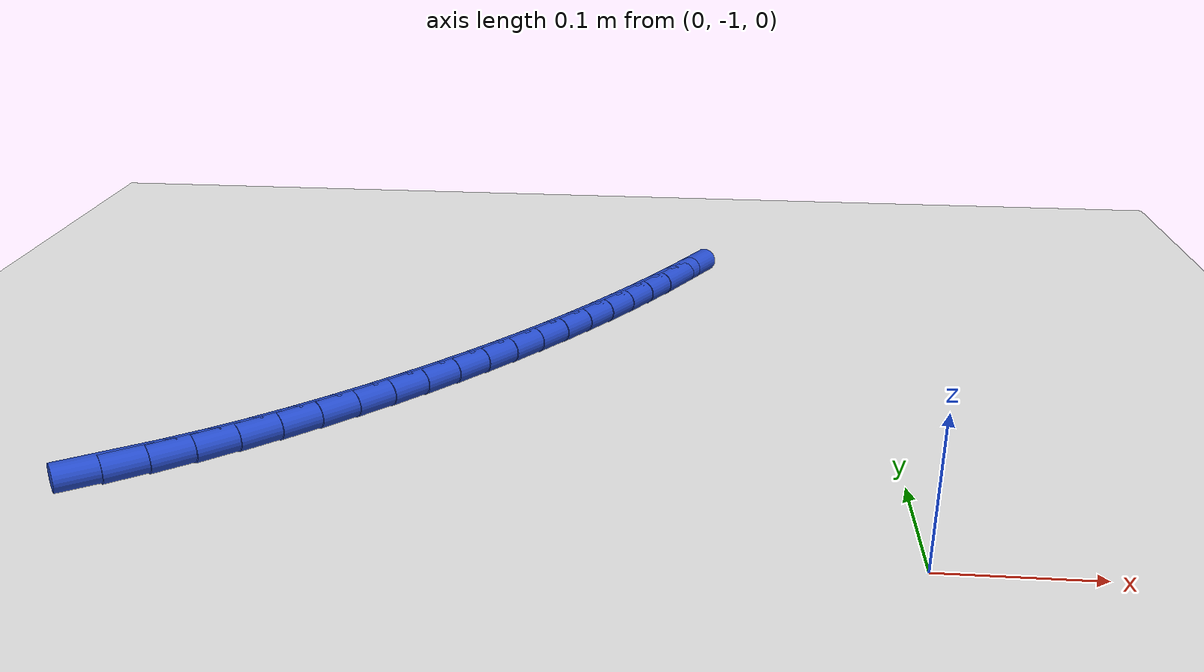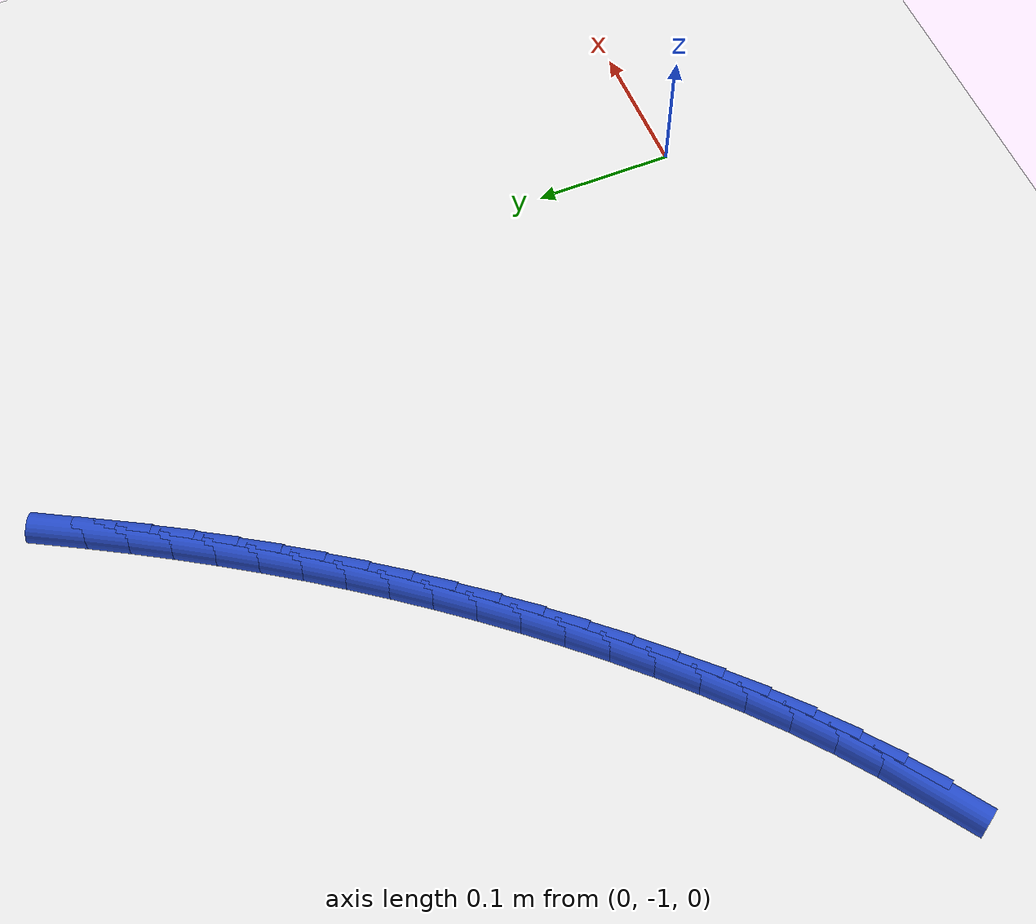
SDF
<sdf version="1.6">
 <world name="default">
  <model name="ground_plane">
   <static>1</static>
   <link name="link">
    <collision name="collision">
     <geometry><plane><normal>0 0 1</normal><size>100 100</size></plane></geometry>
     <surface><friction><ode><mu>100</mu><mu2>50</mu2></ode></friction></surface>
    </collision>
    <visual name="visual">
     <cast_shadows>0</cast_shadows>
     <geometry><plane><normal>0 0 1</normal><size>100 100</size></plane></geometry>
     <material>
      <script><uri>file://media/materials/scripts/gazebo.material</uri><name>Gazebo/WhiteGlow</name></script>
     </material>
    </visual>
   </link>
  </model>
  <model name="line">
   <link name="link_192">
    <pose>-0.5057201228377439 -0.9367455519169722 0.01 0 1.57 0.5937268577542376</pose>
    <collision name="collision">
     <geometry><cylinder><radius>0.01</radius><length>0.08</length></cylinder></geometry>
    </collision>
    <visual name="visual">
     <material>
      <script><name>Gazebo/Blue</name><uri>file://media/materials/scripts/gazebo.material</uri></script>
     </material>
     <geometry><cylinder><radius>0.01</radius><length>0.08</length></cylinder></geometry>
    </visual>
   </link>
   <link name="link_193">
    <pose>-0.48134088920202533 -0.920290378622342 0.01 0 1.57 0.642581780084537</pose>
    <collision name="collision">
     <geometry><cylinder><radius>0.01</radius><length>0.08</length></cylinder></geometry>
    </collision>
    <visual name="visual">
     <material>
      <script><name>Gazebo/Blue</name><uri>file://media/materials/scripts/gazebo.material</uri></script>
     </material>
     <geometry><cylinder><radius>0.01</radius><length>0.08</length></cylinder></geometry>
    </visual>
   </link>
   <link name="link_194">
    <pose>-0.4575895350340047 -0.9025109571571233 0.01 0 1.57 0.6854126990619406</pose>
    <collision name="collision">
     <geometry><cylinder><radius>0.01</radius><length>0.08</length></cylinder></geometry>
    </collision>
    <visual name="visual">
     <material>
      <script><name>Gazebo/Blue</name><uri>file://media/materials/scripts/gazebo.material</uri></script>
     </material>
     <geometry><cylinder><radius>0.01</radius><length>0.08</length></cylinder></geometry>
    </visual>
   </link>
   <link name="link_195">
    <pose>-0.43447386028665175 -0.8836103549030602 0.01 0 1.57 0.7227368060605539</pose>
    <collision name="collision">
     <geometry><cylinder><radius>0.01</radius><length>0.08</length></cylinder></geometry>
    </collision>
    <visual name="visual">
     <material>
      <script><name>Gazebo/Blue</name><uri>file://media/materials/scripts/gazebo.material</uri></script>
     </material>
     <geometry><cylinder><radius>0.01</radius><length>0.08</length></cylinder></geometry>
    </visual>
   </link>
   <link name="link_196">
    <pose>-0.4120016649129363 -0.863791639241897 0.01 0 1.57 0.7550176151287756</pose>
    <collision name="collision">
     <geometry><cylinder><radius>0.01</radius><length>0.08</length></cylinder></geometry>
    </collision>
    <visual name="visual">
     <material>
      <script><name>Gazebo/Blue</name><uri>file://media/materials/scripts/gazebo.material</uri></script>
     </material>
     <geometry><cylinder><radius>0.01</radius><length>0.08</length></cylinder></geometry>
    </visual>
   </link>
   <link name="link_197">
    <pose>-0.39018074886582754 -0.8432578775553772 0.01 0 1.57 0.7826475637990911</pose>
    <collision name="collision">
     <geometry><cylinder><radius>0.01</radius><length>0.08</length></cylinder></geometry>
    </collision>
    <visual name="visual">
     <material>
      <script><name>Gazebo/Blue</name><uri>file://media/materials/scripts/gazebo.material</uri></script>
     </material>
     <geometry><cylinder><radius>0.01</radius><length>0.08</length></cylinder></geometry>
    </visual>
   </link>
   <link name="link_198">
    <pose>-0.3690189120982961 -0.8222121372252458 0.01 0 1.57 0.8065152339943822</pose>
    <collision name="collision">
     <geometry><cylinder><radius>0.01</radius><length>0.08</length></cylinder></geometry>
    </collision>
    <visual name="visual">
     <material>
      <script><name>Gazebo/Blue</name><uri>file://media/materials/scripts/gazebo.material</uri></script>
     </material>
     <geometry><cylinder><radius>0.01</radius><length>0.08</length></cylinder></geometry>
    </visual>
   </link>
   <link name="link_199">
    <pose>-0.3485196106323033 -0.8008282541021886 0.01 0 1.57 0.8294033406318403</pose>
    <collision name="collision">
     <geometry><cylinder><radius>0.01</radius><length>0.08</length></cylinder></geometry>
    </collision>
    <visual name="visual">
     <material>
      <script><name>Gazebo/Blue</name><uri>file://media/materials/scripts/gazebo.material</uri></script>
     </material>
     <geometry><cylinder><radius>0.01</radius><length>0.08</length></cylinder></geometry>
    </visual>
   </link>
   <link name="link_200">
    <pose>-0.3286663899294448 -0.779146080287469 0.01 0 1.57 0.8520258383006497</pose>
    <collision name="collision">
     <geometry><cylinder><radius>0.01</radius><length>0.08</length></cylinder></geometry>
    </collision>
    <visual name="visual">
     <material>
      <script><name>Gazebo/Blue</name><uri>file://media/materials/scripts/gazebo.material</uri></script>
     </material>
     <geometry><cylinder><radius>0.01</radius><length>0.08</length></cylinder></geometry>
    </visual>
   </link>
   <link name="link_201">
    <pose>-0.3094370942970203 -0.7571671032148285 0.01 0 1.57 0.8743221220953936</pose>
    <collision name="collision">
     <geometry><cylinder><radius>0.01</radius><length>0.08</length></cylinder></geometry>
    </collision>
    <visual name="visual">
     <material>
      <script><name>Gazebo/Blue</name><uri>file://media/materials/scripts/gazebo.material</uri></script>
     </material>
     <geometry><cylinder><radius>0.01</radius><length>0.08</length></cylinder></geometry>
    </visual>
   </link>
   <link name="link_202">
    <pose>-0.2908095675770398 -0.7348928071869363 0.01 0 1.57 0.8962334772193448</pose>
    <collision name="collision">
     <geometry><cylinder><radius>0.01</radius><length>0.08</length></cylinder></geometry>
    </collision>
    <visual name="visual">
     <material>
      <script><name>Gazebo/Blue</name><uri>file://media/materials/scripts/gazebo.material</uri></script>
     </material>
     <geometry><cylinder><radius>0.01</radius><length>0.08</length></cylinder></geometry>
    </visual>
   </link>
   <link name="link_203">
    <pose>-0.27276165361151167 -0.7123246765064584 0.01 0 1.57 0.9177037202692822</pose>
    <collision name="collision">
     <geometry><cylinder><radius>0.01</radius><length>0.08</length></cylinder></geometry>
    </collision>
    <visual name="visual">
     <material>
      <script><name>Gazebo/Blue</name><uri>file://media/materials/scripts/gazebo.material</uri></script>
     </material>
     <geometry><cylinder><radius>0.01</radius><length>0.08</length></cylinder></geometry>
    </visual>
   </link>
   <link name="link_204">
    <pose>-0.25527119624244493 -0.6894641954760627 0.01 0 1.57 0.9386797106648985</pose>
    <collision name="collision">
     <geometry><cylinder><radius>0.01</radius><length>0.08</length></cylinder></geometry>
    </collision>
    <visual name="visual">
     <material>
      <script><name>Gazebo/Blue</name><uri>file://media/materials/scripts/gazebo.material</uri></script>
     </material>
     <geometry><cylinder><radius>0.01</radius><length>0.08</length></cylinder></geometry>
    </visual>
   </link>
   <link name="link_205">
    <pose>-0.23831603931184847 -0.6663128483984164 0.01 0 1.57 0.9591117835124003</pose>
    <collision name="collision">
     <geometry><cylinder><radius>0.01</radius><length>0.08</length></cylinder></geometry>
    </collision>
    <visual name="visual">
     <material>
      <script><name>Gazebo/Blue</name><uri>file://media/materials/scripts/gazebo.material</uri></script>
     </material>
     <geometry><cylinder><radius>0.01</radius><length>0.08</length></cylinder></geometry>
    </visual>
   </link>
   <link name="link_206">
    <pose>-0.2218740266617309 -0.6428721195761863 0.01 0 1.57 0.9789540970398946</pose>
    <collision name="collision">
     <geometry><cylinder><radius>0.01</radius><length>0.08</length></cylinder></geometry>
    </collision>
    <visual name="visual">
     <material>
      <script><name>Gazebo/Blue</name><uri>file://media/materials/scripts/gazebo.material</uri></script>
     </material>
     <geometry><cylinder><radius>0.01</radius><length>0.08</length></cylinder></geometry>
    </visual>
   </link>
   <link name="link_207">
    <pose>-0.20592300213410195 -0.6191434933120413 0.01 0 1.57 0.9981648914540352</pose>
    <collision name="collision">
     <geometry><cylinder><radius>0.01</radius><length>0.08</length></cylinder></geometry>
    </collision>
    <visual name="visual">
     <material>
      <script><name>Gazebo/Blue</name><uri>file://media/materials/scripts/gazebo.material</uri></script>
     </material>
     <geometry><cylinder><radius>0.01</radius><length>0.08</length></cylinder></geometry>
    </visual>
   </link>
   <link name="link_208">
    <pose>-0.19044080957097015 -0.5951284539086475 0.01 0 1.57 1.0167066595992214</pose>
    <collision name="collision">
     <geometry><cylinder><radius>0.01</radius><length>0.08</length></cylinder></geometry>
    </collision>
    <visual name="visual">
     <material>
      <script><name>Gazebo/Blue</name><uri>file://media/materials/scripts/gazebo.material</uri></script>
     </material>
     <geometry><cylinder><radius>0.01</radius><length>0.08</length></cylinder></geometry>
    </visual>
   </link>
   <link name="link_209">
    <pose>-0.1754052928143445 -0.5708284856686731 0.01 0 1.57 1.0345462329545063</pose>
    <collision name="collision">
     <geometry><cylinder><radius>0.01</radius><length>0.08</length></cylinder></geometry>
    </collision>
    <visual name="visual">
     <material>
      <script><name>Gazebo/Blue</name><uri>file://media/materials/scripts/gazebo.material</uri></script>
     </material>
     <geometry><cylinder><radius>0.01</radius><length>0.08</length></cylinder></geometry>
    </visual>
   </link>
   <link name="link_210">
    <pose>-0.16079429570623358 -0.5462450728947844 0.01 0 1.57 1.0516547891329482</pose>
    <collision name="collision">
     <geometry><cylinder><radius>0.01</radius><length>0.08</length></cylinder></geometry>
    </collision>
    <visual name="visual">
     <material>
      <script><name>Gazebo/Blue</name><uri>file://media/materials/scripts/gazebo.material</uri></script>
     </material>
     <geometry><cylinder><radius>0.01</radius><length>0.08</length></cylinder></geometry>
    </visual>
   </link>
   <link name="link_211">
    <pose>-0.146585662088647 -0.52137969988965 0.01 0 1.57 1.0683068966544262</pose>
    <collision name="collision">
     <geometry><cylinder><radius>0.01</radius><length>0.08</length></cylinder></geometry>
    </collision>
    <visual name="visual">
     <material>
      <script><name>Gazebo/Blue</name><uri>file://media/materials/scripts/gazebo.material</uri></script>
     </material>
     <geometry><cylinder><radius>0.01</radius><length>0.08</length></cylinder></geometry>
    </visual>
   </link>
  </model>
 </world>
</sdf>
